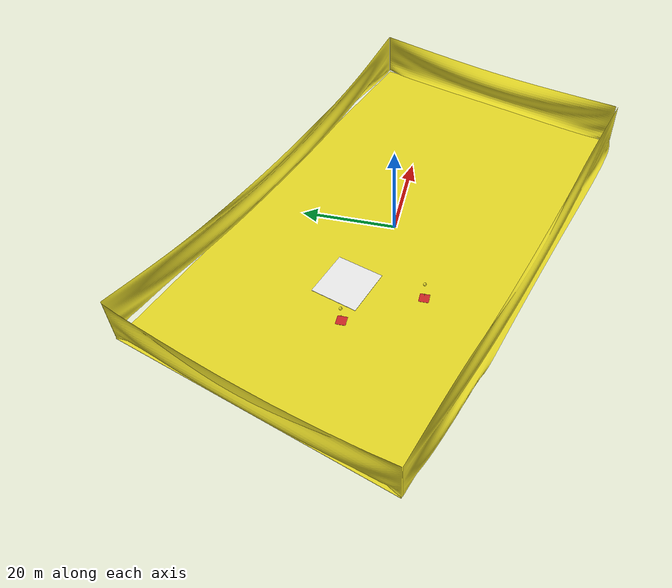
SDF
<sdf version="1.6">
 <world name="default">
  <model name="Balloon4.5m_clone">
   <link name="link_0">
    <pose>0 0 -0.025 0 -0 0</pose>
    <inertial>
     <mass>100</mass>
     <inertia>
      <ixx>0.166667</ixx>
      <ixy>0</ixy>
      <ixz>0</ixz>
      <iyy>0.166667</iyy>
      <iyz>0</iyz>
      <izz>0.166667</izz>
     </inertia>
    </inertial>
    <visual name="visual">
     <geometry><mesh><uri>/home/varun/MBZIRC_Arena/Balloon/Base.dae</uri><scale>1 1 1</scale></mesh></geometry>
     <material>
      <lighting>1</lighting>
      <script><uri>file://media/materials/scripts/gazebo.material</uri><name>Gazebo/Red</name></script>
      <shader type="vertex"><normal_map>__default__</normal_map></shader>
      <ambient>0.3 0.3 0.3 1</ambient>
      <diffuse>1 1 1 1</diffuse>
      <specular>0.1 0.1 0.1 1</specular>
      <emissive>0 0 0 1</emissive>
     </material>
    </visual>
    <collision name="collision">
     <geometry><mesh><uri>/home/varun/MBZIRC_Arena/Balloon/Base.dae</uri><scale>1 1 1</scale></mesh></geometry>
     <surface>
      <friction>
       <ode><mu>1</mu><mu2>1</mu2><fdir1>0 0 0</fdir1><slip1>0</slip1><slip2>0</slip2></ode>
       <torsional>
        <coefficient>1</coefficient>
        <patch_radius>0</patch_radius>
        <surface_radius>0</surface_radius>
        <use_patch_radius>1</use_patch_radius>
        <ode><slip>0</slip></ode>
       </torsional>
      </friction>
      <bounce><restitution_coefficient>0</restitution_coefficient><threshold>1e+06</threshold></bounce>
      <contact>
       <collide_without_contact>0</collide_without_contact>
       <collide_without_contact_bitmask>1</collide_without_contact_bitmask>
       <collide_bitmask>1</collide_bitmask>
       <ode>
        <soft_cfm>0</soft_cfm>
        <soft_erp>0.2</soft_erp>
        <kp>1e+13</kp>
        <kd>1</kd>
        <max_vel>0.01</max_vel>
        <min_depth>0</min_depth>
       </ode>
       <bullet>
        <split_impulse>1</split_impulse>
        <split_impulse_penetration_threshold>-0.01</split_impulse_penetration_threshold>
        <soft_cfm>0</soft_cfm>
        <soft_erp>0.2</soft_erp>
        <kp>1e+13</kp>
        <kd>1</kd>
       </bullet>
      </contact>
     </surface>
    </collision>
   </link>
   <link name="link_1">
    <pose>-0 -0 0.025 0 -0 0</pose>
    <inertial>
     <mass>0.2</mass>
     <inertia>
      <ixx>0.166667</ixx>
      <ixy>0</ixy>
      <ixz>0</ixz>
      <iyy>0.166667</iyy>
      <iyz>0</iyz>
      <izz>0.166667</izz>
     </inertia>
     <pose>0 0 4.5 0 -0 0</pose>
    </inertial>
    <visual name="visual">
     <geometry>
      <mesh><uri>/home/varun/MBZIRC_Arena/Balloon/Balloon4.5m.dae</uri><scale>1 1 1</scale></mesh>
     </geometry>
     <material>
      <lighting>1</lighting>
      <script><uri>file://media/materials/scripts/gazebo.material</uri><name>Gazebo/Yellow</name></script>
      <shader type="pixel"><normal_map>__default__</normal_map></shader>
      <ambient>0.3 0.3 0.3 1</ambient>
      <diffuse>0.7 0.7 0.7 1</diffuse>
      <specular>0.01 0.01 0.01 1</specular>
      <emissive>0 0 0 1</emissive>
     </material>
    </visual>
    <collision name="collision">
     <geometry>
      <mesh><uri>/home/varun/MBZIRC_Arena/Balloon/Balloon4.5m.dae</uri><scale>1 1 1</scale></mesh>
     </geometry>
     <surface>
      <friction>
       <ode><mu>1</mu><mu2>1</mu2><fdir1>0 0 0</fdir1><slip1>0</slip1><slip2>0</slip2></ode>
       <torsional>
        <coefficient>1</coefficient>
        <patch_radius>0</patch_radius>
        <surface_radius>0</surface_radius>
        <use_patch_radius>1</use_patch_radius>
        <ode><slip>0</slip></ode>
       </torsional>
      </friction>
      <bounce><restitution_coefficient>0</restitution_coefficient><threshold>1e+06</threshold></bounce>
      <contact>
       <collide_without_contact>0</collide_without_contact>
       <collide_without_contact_bitmask>1</collide_without_contact_bitmask>
       <collide_bitmask>1</collide_bitmask>
       <ode>
        <soft_cfm>0</soft_cfm>
        <soft_erp>0.2</soft_erp>
        <kp>1e+13</kp>
        <kd>1</kd>
        <max_vel>0.01</max_vel>
        <min_depth>0</min_depth>
       </ode>
       <bullet>
        <split_impulse>1</split_impulse>
        <split_impulse_penetration_threshold>-0.01</split_impulse_penetration_threshold>
        <soft_cfm>0</soft_cfm>
        <soft_erp>0.2</soft_erp>
        <kp>1e+13</kp>
        <kd>1</kd>
       </bullet>
      </contact>
     </surface>
    </collision>
   </link>
   <joint name="ball_joint" type="ball">
    <parent>link_0</parent>
    <child>link_1</child>
    <physics>
     <ode><limit><cfm>0</cfm><erp>0.2</erp></limit><suspension><cfm>0</cfm><erp>0.2</erp></suspension></ode>
    </physics>
   </joint>
   <static>0</static>
   <plugin name="wind_push" filename="libwind_push.so"/>
   <pose>-17.4019 -9.55306 -0.132338 8.4e-05 -0 7e-05</pose>
  </model>
  <model name="Balloon4m_clone">
   <link name="link_0">
    <pose>0 0 -0.025 0 -0 0</pose>
    <inertial>
     <mass>100</mass>
     <inertia>
      <ixx>0.166667</ixx>
      <ixy>0</ixy>
      <ixz>0</ixz>
      <iyy>0.166667</iyy>
      <iyz>0</iyz>
      <izz>0.166667</izz>
     </inertia>
    </inertial>
    <visual name="visual">
     <geometry><mesh><uri>/home/varun/MBZIRC_Arena/Balloon/Base.dae</uri><scale>1 1 1</scale></mesh></geometry>
     <material>
      <lighting>1</lighting>
      <script><uri>file://media/materials/scripts/gazebo.material</uri><name>Gazebo/Red</name></script>
      <shader type="vertex"><normal_map>__default__</normal_map></shader>
      <ambient>0.3 0.3 0.3 1</ambient>
      <diffuse>1 1 1 1</diffuse>
      <specular>0.1 0.1 0.1 1</specular>
      <emissive>0 0 0 1</emissive>
     </material>
    </visual>
    <collision name="collision">
     <geometry><mesh><uri>/home/varun/MBZIRC_Arena/Balloon/Base.dae</uri><scale>1 1 1</scale></mesh></geometry>
     <surface>
      <friction>
       <ode><mu>1</mu><mu2>1</mu2><fdir1>0 0 0</fdir1><slip1>0</slip1><slip2>0</slip2></ode>
       <torsional>
        <coefficient>1</coefficient>
        <patch_radius>0</patch_radius>
        <surface_radius>0</surface_radius>
        <use_patch_radius>1</use_patch_radius>
        <ode><slip>0</slip></ode>
       </torsional>
      </friction>
      <bounce><restitution_coefficient>0</restitution_coefficient><threshold>1e+06</threshold></bounce>
      <contact>
       <collide_without_contact>0</collide_without_contact>
       <collide_without_contact_bitmask>1</collide_without_contact_bitmask>
       <collide_bitmask>1</collide_bitmask>
       <ode>
        <soft_cfm>0</soft_cfm>
        <soft_erp>0.2</soft_erp>
        <kp>1e+13</kp>
        <kd>1</kd>
        <max_vel>0.01</max_vel>
        <min_depth>0</min_depth>
       </ode>
       <bullet>
        <split_impulse>1</split_impulse>
        <split_impulse_penetration_threshold>-0.01</split_impulse_penetration_threshold>
        <soft_cfm>0</soft_cfm>
        <soft_erp>0.2</soft_erp>
        <kp>1e+13</kp>
        <kd>1</kd>
       </bullet>
      </contact>
     </surface>
    </collision>
   </link>
   <link name="link_1">
    <pose>-0 -0 0.025 0 -0 0</pose>
    <inertial>
     <mass>0.2</mass>
     <inertia>
      <ixx>0.166667</ixx>
      <ixy>0</ixy>
      <ixz>0</ixz>
      <iyy>0.166667</iyy>
      <iyz>0</iyz>
      <izz>0.166667</izz>
     </inertia>
     <pose>0 0 4 0 -0 0</pose>
    </inertial>
    <visual name="visual">
     <geometry>
      <mesh><uri>/home/varun/MBZIRC_Arena/Balloon/Balloon4m.dae</uri><scale>1 1 1</scale></mesh>
     </geometry>
     <material>
      <lighting>1</lighting>
      <script><uri>file://media/materials/scripts/gazebo.material</uri><name>Gazebo/Yellow</name></script>
      <shader type="pixel"><normal_map>__default__</normal_map></shader>
      <ambient>0.3 0.3 0.3 1</ambient>
      <diffuse>0.7 0.7 0.7 1</diffuse>
      <specular>0.01 0.01 0.01 1</specular>
      <emissive>0 0 0 1</emissive>
     </material>
    </visual>
    <collision name="collision">
     <geometry>
      <mesh><uri>/home/varun/MBZIRC_Arena/Balloon/Balloon4m.dae</uri><scale>1 1 1</scale></mesh>
     </geometry>
     <surface>
      <friction>
       <ode><mu>1</mu><mu2>1</mu2><fdir1>0 0 0</fdir1><slip1>0</slip1><slip2>0</slip2></ode>
       <torsional>
        <coefficient>1</coefficient>
        <patch_radius>0</patch_radius>
        <surface_radius>0</surface_radius>
        <use_patch_radius>1</use_patch_radius>
        <ode><slip>0</slip></ode>
       </torsional>
      </friction>
      <bounce><restitution_coefficient>0</restitution_coefficient><threshold>1e+06</threshold></bounce>
      <contact>
       <collide_without_contact>0</collide_without_contact>
       <collide_without_contact_bitmask>1</collide_without_contact_bitmask>
       <collide_bitmask>1</collide_bitmask>
       <ode>
        <soft_cfm>0</soft_cfm>
        <soft_erp>0.2</soft_erp>
        <kp>1e+13</kp>
        <kd>1</kd>
        <max_vel>0.01</max_vel>
        <min_depth>0</min_depth>
       </ode>
       <bullet>
        <split_impulse>1</split_impulse>
        <split_impulse_penetration_threshold>-0.01</split_impulse_penetration_threshold>
        <soft_cfm>0</soft_cfm>
        <soft_erp>0.2</soft_erp>
        <kp>1e+13</kp>
        <kd>1</kd>
       </bullet>
      </contact>
     </surface>
    </collision>
   </link>
   <joint name="ball_joint" type="ball">
    <parent>link_0</parent>
    <child>link_1</child>
    <physics>
     <ode><limit><cfm>0</cfm><erp>0.2</erp></limit><suspension><cfm>0</cfm><erp>0.2</erp></suspension></ode>
    </physics>
   </joint>
   <static>0</static>
   <plugin name="wind_push" filename="libwind_push.so"/>
   <pose>-25.8447 4.64616 -0.132255 1e-06 2e-06 0</pose>
  </model>
  <model name="Arena100x60">
   <link name="link_1">
    <pose>0 0 -0.257254 0 -0 0</pose>
    <inertial>
     <mass>100</mass>
     <inertia>
      <ixx>0.166667</ixx>
      <ixy>0</ixy>
      <ixz>0</ixz>
      <iyy>0.166667</iyy>
      <iyz>0</iyz>
      <izz>0.166667</izz>
     </inertia>
    </inertial>
    <visual name="visual">
     <geometry><mesh><uri>/home/varun/MBZIRC_Arena/Arena100x60.dae</uri><scale>1 1 1</scale></mesh></geometry>
     <material>
      <lighting>1</lighting>
      <script><uri>file://media/materials/scripts/gazebo.material</uri><name>Gazebo/Yellow</name></script>
      <ambient>0 1 0 1</ambient>
      <diffuse>0.4 0.9 0.4 1</diffuse>
      <specular>0.01 0.01 0.01 1</specular>
      <emissive>0 0 0 1</emissive>
      <shader type="vertex"><normal_map>__default__</normal_map></shader>
     </material>
    </visual>
    <collision name="collision">
     <geometry><mesh><uri>/home/varun/MBZIRC_Arena/Arena100x60.dae</uri><scale>1 1 1</scale></mesh></geometry>
     <surface>
      <friction>
       <ode><mu>1</mu><mu2>1</mu2><fdir1>0 0 0</fdir1><slip1>0</slip1><slip2>0</slip2></ode>
       <torsional>
        <coefficient>1</coefficient>
        <patch_radius>0</patch_radius>
        <surface_radius>0</surface_radius>
        <use_patch_radius>1</use_patch_radius>
        <ode><slip>0</slip></ode>
       </torsional>
      </friction>
      <bounce><restitution_coefficient>0</restitution_coefficient><threshold>1e+06</threshold></bounce>
      <contact>
       <collide_without_contact>0</collide_without_contact>
       <collide_without_contact_bitmask>1</collide_without_contact_bitmask>
       <collide_bitmask>1</collide_bitmask>
       <ode>
        <soft_cfm>0</soft_cfm>
        <soft_erp>0.2</soft_erp>
        <kp>1e+13</kp>
        <kd>1</kd>
        <max_vel>0.01</max_vel>
        <min_depth>0</min_depth>
       </ode>
       <bullet>
        <split_impulse>1</split_impulse>
        <split_impulse_penetration_threshold>-0.01</split_impulse_penetration_threshold>
        <soft_cfm>0</soft_cfm>
        <soft_erp>0.2</soft_erp>
        <kp>1e+13</kp>
        <kd>1</kd>
       </bullet>
      </contact>
     </surface>
    </collision>
   </link>
   <link name="link_2">
    <pose>0.414949 17.8056 -0.142746 0 -0 0</pose>
    <inertial>
     <mass>100</mass>
     <inertia>
      <ixx>0.166667</ixx>
      <ixy>0</ixy>
      <ixz>0</ixz>
      <iyy>0.166667</iyy>
      <iyz>0</iyz>
      <izz>0.166667</izz>
     </inertia>
    </inertial>
    <visual name="visual">
     <geometry><mesh><uri>/home/varun/MBZIRC_Arena/StartLocation.dae</uri><scale>1 1 1</scale></mesh></geometry>
     <material>
      <lighting>1</lighting>
      <script><uri>file://media/materials/scripts/gazebo.material</uri><name>Gazebo/White</name></script>
      <ambient>0.3 0.3 0.3 1</ambient>
      <diffuse>0.7 0.7 0.7 1</diffuse>
      <specular>0.01 0.01 0.01 1</specular>
      <emissive>0 0 0 1</emissive>
      <shader type="vertex"><normal_map>__default__</normal_map></shader>
     </material>
    </visual>
    <collision name="collision">
     <geometry><mesh><uri>/home/varun/MBZIRC_Arena/StartLocation.dae</uri><scale>1 1 1</scale></mesh></geometry>
     <surface>
      <friction>
       <ode><mu>1</mu><mu2>1</mu2><fdir1>0 0 0</fdir1><slip1>0</slip1><slip2>0</slip2></ode>
       <torsional>
        <coefficient>1</coefficient>
        <patch_radius>0</patch_radius>
        <surface_radius>0</surface_radius>
        <use_patch_radius>1</use_patch_radius>
        <ode><slip>0</slip></ode>
       </torsional>
      </friction>
      <bounce><restitution_coefficient>0</restitution_coefficient><threshold>1e+06</threshold></bounce>
      <contact>
       <collide_without_contact>0</collide_without_contact>
       <collide_without_contact_bitmask>1</collide_without_contact_bitmask>
       <collide_bitmask>1</collide_bitmask>
       <ode>
        <soft_cfm>0</soft_cfm>
        <soft_erp>0.2</soft_erp>
        <kp>1e+13</kp>
        <kd>1</kd>
        <max_vel>0.01</max_vel>
        <min_depth>0</min_depth>
       </ode>
       <bullet>
        <split_impulse>1</split_impulse>
        <split_impulse_penetration_threshold>-0.01</split_impulse_penetration_threshold>
        <soft_cfm>0</soft_cfm>
        <soft_erp>0.2</soft_erp>
        <kp>1e+13</kp>
        <kd>1</kd>
       </bullet>
      </contact>
     </surface>
    </collision>
   </link>
   <static>1</static>
   <pose>0 0 0 0 -0 1.256636</pose>
  </model>
  <model name="100x60Net">
   <link name="link_7">
    <inertial>
     <mass>1</mass>
     <inertia>
      <ixx>0.166667</ixx>
      <ixy>0</ixy>
      <ixz>0</ixz>
      <iyy>0.166667</iyy>
      <iyz>0</iyz>
      <izz>0.166667</izz>
     </inertia>
    </inertial>
    <pose>-0.07033 -0.199955 0.028932 1.5708 -0 0</pose>
    <gravity>0</gravity>
    <kinematic>1</kinematic>
    <visual name="visual">
     <geometry>
      <mesh><uri>/home/varun/MBZIRC_Arena/Netted Arena/ArenaNet.obj</uri><scale>1 1 1</scale></mesh>
     </geometry>
     <material>
      <lighting>1</lighting>
      <script><uri>file://media/materials/scripts/gazebo.material</uri><name>Gazebo/Yellow</name></script>
      <shader type="pixel"><normal_map>/home/varun/MBZIRC_Arena/Netted Arena/ArenaNet.mtl</normal_map></shader>
      <ambient>0.3 0.3 0.3 1</ambient>
      <diffuse>0.7 0.7 0.7 1</diffuse>
      <specular>0.01 0.01 0.01 1</specular>
      <emissive>0 0 0 1</emissive>
     </material>
    </visual>
    <collision name="collision">
     <geometry>
      <mesh><uri>/home/varun/MBZIRC_Arena/Netted Arena/ArenaNet.obj</uri><scale>1 1 1</scale></mesh>
     </geometry>
     <surface>
      <friction>
       <ode><mu>1</mu><mu2>1</mu2><fdir1>0 0 0</fdir1><slip1>0</slip1><slip2>0</slip2></ode>
       <torsional>
        <coefficient>1</coefficient>
        <patch_radius>0</patch_radius>
        <surface_radius>0</surface_radius>
        <use_patch_radius>1</use_patch_radius>
        <ode><slip>0</slip></ode>
       </torsional>
      </friction>
      <bounce><restitution_coefficient>0</restitution_coefficient><threshold>1e+06</threshold></bounce>
      <contact>
       <collide_without_contact>0</collide_without_contact>
       <collide_without_contact_bitmask>1</collide_without_contact_bitmask>
       <collide_bitmask>1</collide_bitmask>
       <ode>
        <soft_cfm>0</soft_cfm>
        <soft_erp>0.2</soft_erp>
        <kp>1e+13</kp>
        <kd>1</kd>
        <max_vel>0.01</max_vel>
        <min_depth>0</min_depth>
       </ode>
       <bullet>
        <split_impulse>1</split_impulse>
        <split_impulse_penetration_threshold>-0.01</split_impulse_penetration_threshold>
        <soft_cfm>0</soft_cfm>
        <soft_erp>0.2</soft_erp>
        <kp>1e+13</kp>
        <kd>1</kd>
       </bullet>
      </contact>
     </surface>
    </collision>
   </link>
   <link name="link_7_clone">
    <inertial>
     <mass>1</mass>
     <inertia>
      <ixx>0.166667</ixx>
      <ixy>0</ixy>
      <ixz>0</ixz>
      <iyy>0.166667</iyy>
      <iyz>0</iyz>
      <izz>0.166667</izz>
     </inertia>
    </inertial>
    <pose>0.07033 0.199955 -0.028932 1.57079 -0 -3.14159</pose>
    <gravity>0</gravity>
    <kinematic>1</kinematic>
    <visual name="visual">
     <geometry>
      <mesh><uri>/home/varun/MBZIRC_Arena/Netted Arena/ArenaNet.obj</uri><scale>1 1 1</scale></mesh>
     </geometry>
     <material>
      <lighting>1</lighting>
      <script><uri>file://media/materials/scripts/gazebo.material</uri><name>Gazebo/Yellow</name></script>
      <shader type="pixel"><normal_map>/home/varun/MBZIRC_Arena/Netted Arena/ArenaNet.mtl</normal_map></shader>
      <ambient>0.3 0.3 0.3 1</ambient>
      <diffuse>0.7 0.7 0.7 1</diffuse>
      <specular>0.01 0.01 0.01 1</specular>
      <emissive>0 0 0 1</emissive>
     </material>
    </visual>
    <collision name="collision">
     <geometry>
      <mesh><uri>/home/varun/MBZIRC_Arena/Netted Arena/ArenaNet.obj</uri><scale>1 1 1</scale></mesh>
     </geometry>
     <surface>
      <friction>
       <ode><mu>1</mu><mu2>1</mu2><fdir1>0 0 0</fdir1><slip1>0</slip1><slip2>0</slip2></ode>
       <torsional>
        <coefficient>1</coefficient>
        <patch_radius>0</patch_radius>
        <surface_radius>0</surface_radius>
        <use_patch_radius>1</use_patch_radius>
        <ode><slip>0</slip></ode>
       </torsional>
      </friction>
      <bounce><restitution_coefficient>0</restitution_coefficient><threshold>1e+06</threshold></bounce>
      <contact>
       <collide_without_contact>0</collide_without_contact>
       <collide_without_contact_bitmask>1</collide_without_contact_bitmask>
       <collide_bitmask>1</collide_bitmask>
       <ode>
        <soft_cfm>0</soft_cfm>
        <soft_erp>0.2</soft_erp>
        <kp>1e+13</kp>
        <kd>1</kd>
        <max_vel>0.01</max_vel>
        <min_depth>0</min_depth>
       </ode>
       <bullet>
        <split_impulse>1</split_impulse>
        <split_impulse_penetration_threshold>-0.01</split_impulse_penetration_threshold>
        <soft_cfm>0</soft_cfm>
        <soft_erp>0.2</soft_erp>
        <kp>1e+13</kp>
        <kd>1</kd>
       </bullet>
      </contact>
     </surface>
    </collision>
   </link>
   <static>0</static>
   <pose>0 0 0 0 -0 -0.314159</pose>
  </model>
 </world>
</sdf>
